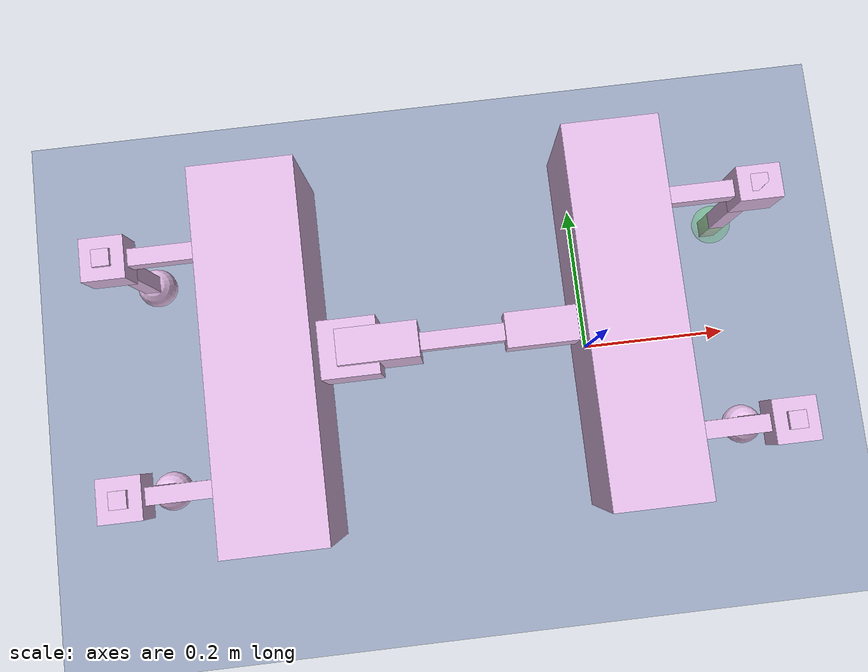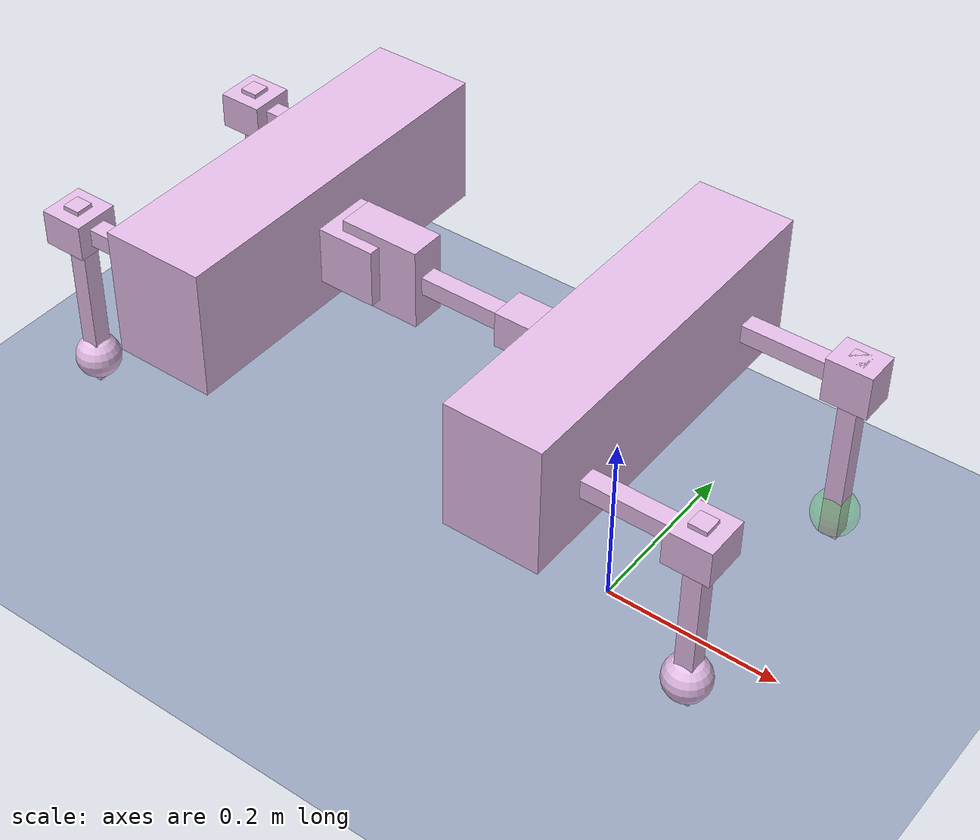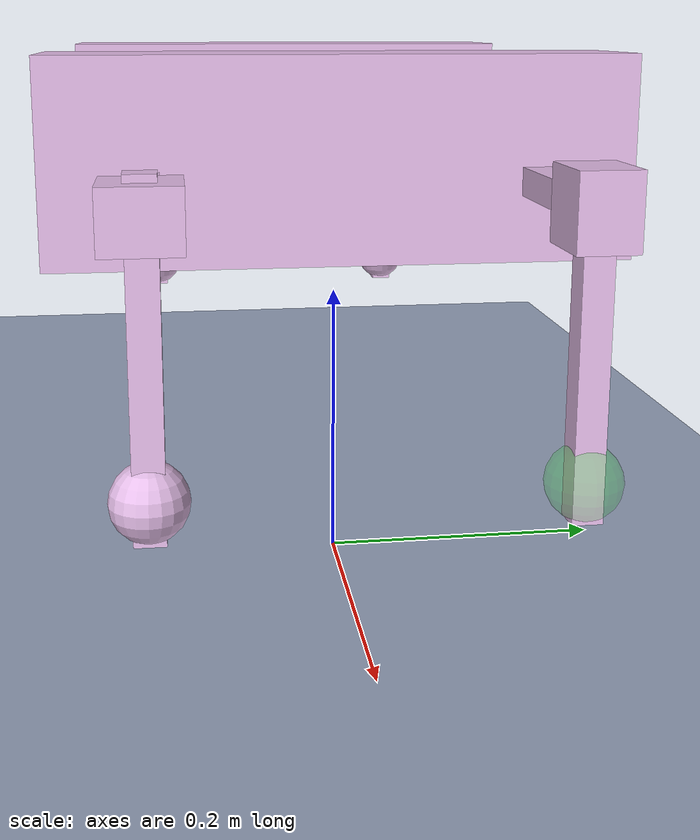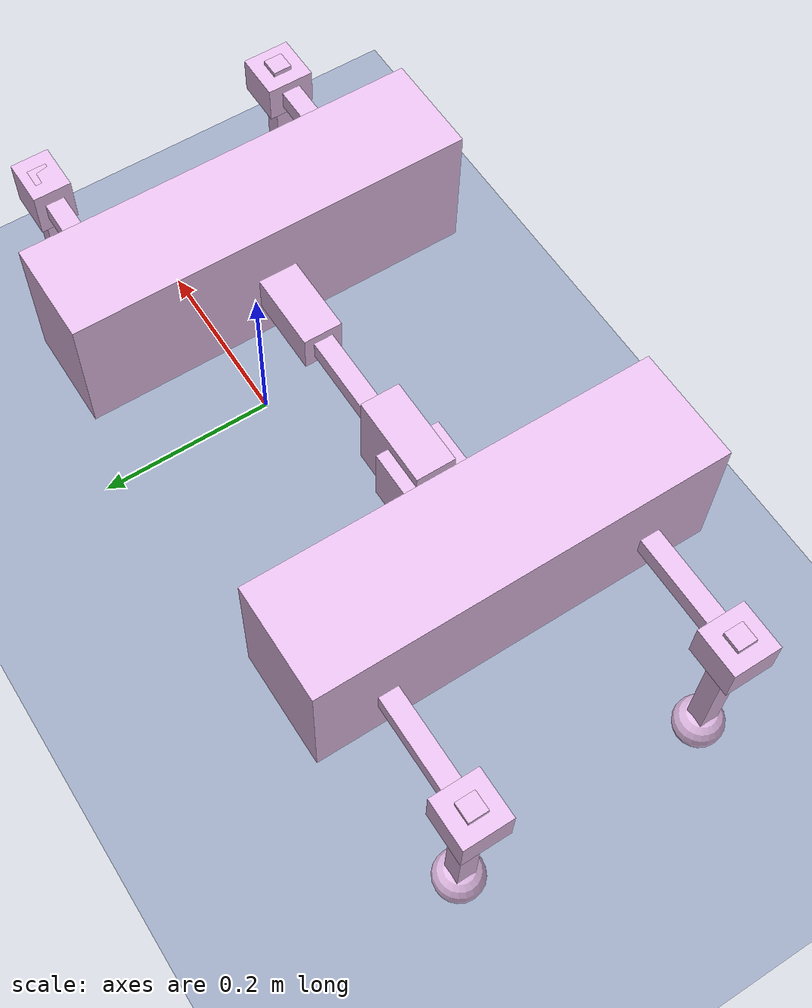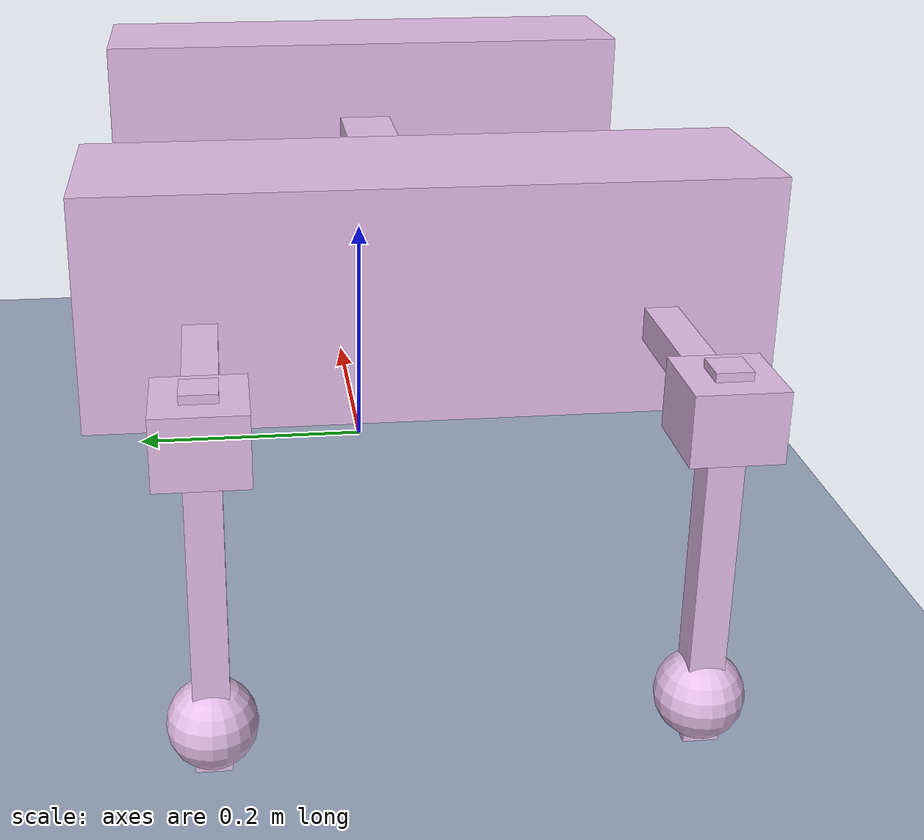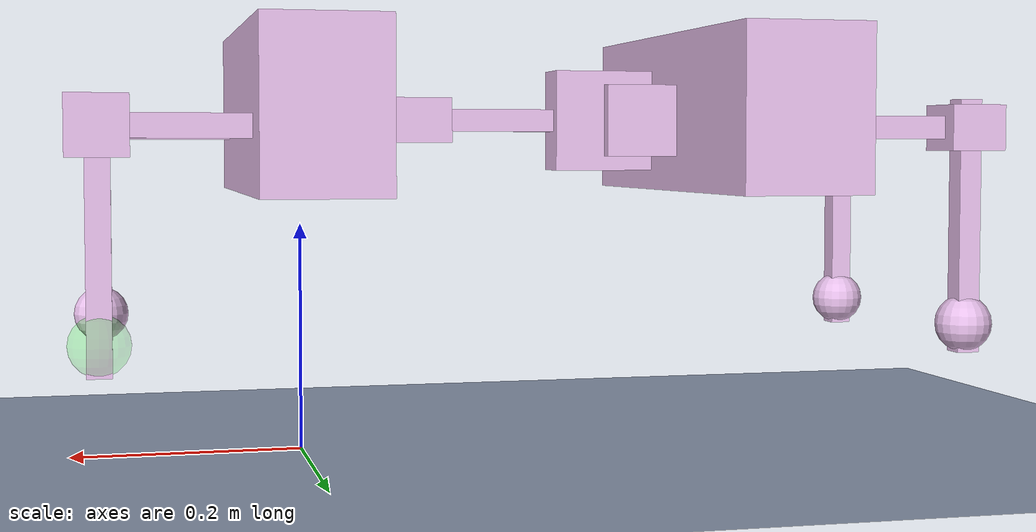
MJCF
<!--stray model

-->

<mujoco model='Stray'>
  <compiler inertiafromgeom='false' angle='degree' eulerseq='xyz'/>
  <size nuser_actuator='1' nuser_sensor='1'/>
  <option timestep='0.001' iterations='50' solver='PGS' gravity='0 0 -0.9.806'/>
  <!-- Timestep is set to 0.001 because our controller runs at 1kHz (-9.806) -->
  <!-- Larger values still have stable dynamics -->
    <visual>
    <quality shadowsize='4096'/>
    <map znear='0.05'/>
    </visual>

    <default>
      <joint limited='true'/>
      <geom contype='0' conaffinity='0' condim='1' solref=".005 1" solimp=".8 .8 .01" material='collision'/>
      <equality solref='0.005 1'/>
      <motor ctrllimited='true'/>
      <mesh scale='0.001 0.001 0.001'/>

      <default class='mesh-import'>
          <geom type='mesh' euler='0 90 90' material='cassie'/>
      </default>
    </default>

    <asset>
        <texture type='skybox' builtin='gradient' width='128' height='128' rgb1='0.725490196078431   0.403921568627451   1.000000000000000' rgb2='1.000000000000000   0.984313725490196   0.588235294117647'/>
        <texture name='plane' type='2d' builtin='checker'  rgb1='0.2 0.3 0.5' rgb2='1 1 1' width='128' height='128'/>
        <material name='plane' reflectance='0' texture='plane' texrepeat='4 4' texuniform='true'/>
        <material name='cassie' rgba='0.8921568627451   0.73921568627451   0.9078431372549 1'/>
        <material name='collision' rgba='0 1 0 0.1'/>
    </asset>

    <worldbody>
        <geom type='plane' size='100 100 100' material='plane' condim='3' contype='1' conaffinity='1' friction='1 0.005 0.0001'/>
        <light name="temp" mode='fixed' castshadow='false' active="true" pos='2 -2 5' exponent='1'/>
        <body name='front_body' pos='-0.00 0 0.3'>
            <site name="bodyref" size="0.01"/>
            <camera name="track" mode="trackcom" pos="0 -3 0.5" xyaxes="1 0 0 0 0 1"/>

            <inertial pos="0.05 0 0" mass="6.53617385" diaginertia="0.12444697 0.07859602 0.18081671" />
            <geom type='box' size='0.0525 0.2055 0.072' material='cassie' contype='1' conaffinity='1' condim='3' />
            <geom type='box' size='0.0525 0.2055 0.072' material='cassie' />

            <freejoint name="root" />>

            <!-- LF U -->
            <body name='LF_U' pos='0.1125 0.1345 -0.015' euler='0 0 0'>
               <inertial pos='0 0 0' mass='0.00001' diaginertia='0.000000001 0.000000001 0.000000001'/>
               <geom type='box' size='0.06 0.01 0.01' material='cassie'/>

               <!-- lf leg -->
               <body name='phi_LF' pos='0.06 0 0' euler='0 0 0'>
                  <inertial pos='0 0 0' mass='0.00001' diaginertia='0.000000001 0.000000001 0.000000001'/>
                  <geom type='box' size="0.025 0.02 0.025" euler="0 0 0" material='cassie' contype='1' conaffinity='1' condim='3' />
                  <geom type='box' size="0.025 0.02 0.025" euler="0 0 0" material='cassie' />
                  <joint name='phi_LF' type='hinge' pos='0 0 0' axis='0 1 0' range='-90 90' ref='0' armature='0.0001'/>

                  <body name="len_LF" pos='0.0 0 -0.1732' euler='0 0 0'>
                    <inertial pos='0 0 0' mass='0.00001' diaginertia='0.000000001 0.000000001 0.000000001'/>
                    <geom type='box' size='0.01 0.01 0.1116' material='cassie' pos="0 0 0.0866" />
                    <joint name='len_LF' type='slide' pos='0 0 0' axis='0 0 1' range='-0.07 0.07' ref='0' armature='0.0001'/>

                    <body name='foot1' pos='0 0 0' euler='0 0 0'>
                          <inertial pos="0 0 0" mass="0.01393601" diaginertia="0.00000166 0.00000366 0.00000244" />
                          <geom type='sphere' size="0.025" contype='1' conaffinity='1' condim='3'/>

                    </body>
                  </body>

               </body>
            </body>

            <!-- RF U -->
            <body name='RF_U' pos='0.1125 -0.1345 -0.015' euler='0 0 0'>
               <inertial pos='0 0 0' mass='0.00001' diaginertia='0.000000001 0.000000001 0.000000001'/>
               <geom type='box' size='0.06 0.01 0.01' material='cassie'/>

               <!-- rf leg -->
               <body name='phi_RF' pos='0.06 0 0' euler='0 0 0'>
                  <inertial pos='0 0 0' mass='0.00001' diaginertia='0.000000001 0.000000001 0.000000001'/>
                  <geom type='box' size="0.025 0.02 0.025" euler="90 0 0" material='cassie' contype='1' conaffinity='1' condim='3'/>
                  <geom type='box' size="0.025 0.02 0.025" euler="90 0 0" material='cassie' />
                  <joint name='phi_RF' type='hinge' pos='0 0 0' axis='0 1 0' range='-90 90' ref='0' armature='0.0001'/>

                  <body name="len_RF" pos='0.0 0 -0.1732' euler='0 0 0'>
                    <inertial pos='0 0 0' mass='0.00001' diaginertia='0.000000001 0.000000001 0.000000001'/>
                    <geom type='box' size='0.01 0.01 0.1116' material='cassie' pos="0 0 0.0866" />
                    <joint name='len_RF' type='slide' pos='0 0 0' axis='0 0 1' range='-0.07 0.07' ref='0' armature='0.0001'/>

                    <body name='foot2' pos='0 0 0' euler='0 0 0'>
                          <inertial pos="0 0 0" mass="0.01393601" diaginertia="0.00000166 0.00000366 0.00000244" />
                          <geom type='sphere' size="0.025" material='cassie' contype='1' conaffinity='1' condim='3'/>

                    </body>
                  </body>

               </body>
            </body>

            <!-- spine_front -->
            <body name='spine_f' pos='-0.093 0 -0.008' euler='0 0 0'>
                <inertial pos='0 0 0' mass='0.00001' diaginertia='0.000000001 0.000000001 0.000000001'/>
                <geom type='box' size='0.0405 0.02 0.02' euler="0 0 0" material='cassie' contype='1' conaffinity='1' condim='3'/>
                <geom type='box' size='0.0405 0.02 0.02' euler="0 0 0" material='cassie'/>
                <joint name='spine_f' type='hinge' pos='0.04425 0 0' axis='1 0 0' range='-180 180' ref='0' armature='0.0001' />

                <body name='tube' pos='-0.1108118 0 0' euler='0 0 0'>
                    <inertial pos='0 0 0' mass='0.0000001' diaginertia='0.00001 0.00001 0.00001'/>
                    <geom type='box' size='0.1 0.01 0.01' material='cassie'/>
                    <joint name='spine_slide' type='slide' axis='1 0 0' limited='true' ref='0' range='-0.04 0.04'/>

                    <body name='spine_phi_motor' pos='-0.0703118 0 0' euler='0 0 0'>
                        <inertial pos='0 0 0' mass='0.00001' diaginertia='0.000000001 0.000000001 0.000000001'/>
                        <geom type='box' size='0.045 0.02 0.045' euler="0 0 0" material='cassie' />

                        <body name='spine_phi' pos='-0.0 0 0' euler='0 0 0'>
                            <inertial pos="0 0 0" mass="1.61358221" diaginertia="0.00705558 0.00247344 0.00724607" />
                            <geom type='box' size="0.0325 0.0325 0.0325" euler="0 0 0" pos="-0.0325 0 0" material='cassie'/>
                            <joint name='spine_phi' type='hinge' pos='0 0 0' axis='0 1 0' range='-90 90' ref='0' armature='0.0001'/>

                            <body name='hind_body' pos='-0.122 0 0.008' euler='0 0 0'>
                                <inertial pos="-0.05 0 0" mass="6.33306601" diaginertia="0.10445130 0.06424537 0.14874071" />
                                <geom type='box' size='0.057 0.2055 0.072' euler="0 0 0" material='cassie' contype='1' conaffinity='1' condim='3'/>
                                <geom type='box' size='0.057 0.2055 0.072' euler="0 0 0" material='cassie'/>
                                <joint name='spine_h' type='hinge' pos='0.057 0 0' axis='1 0 0' range='-180 180' ref='0'  armature='0.0001'/>

                                <!-- LH U -->
                                <body name='LH_U' pos='-0.117 0.1345 -0.015' euler='0 0 0'>
                                <inertial pos='0 0 0' mass='0.00001' diaginertia='0.000000001 0.000000001 0.000000001'/>
                                <geom type='box' size='0.06 0.01 0.01' material='cassie'/>

                                <!-- lh leg -->
                                <body name='phi_LH' pos='-0.06 0 0' euler='0 0 0'>
                                    <inertial pos='0 0 0' mass='0.00001' diaginertia='0.000000001 0.000000001 0.000000001'/>
                                    <geom type='box' size="0.025 0.02 0.025" euler="90 0 0" material='cassie' contype='1' conaffinity='1' condim='3'/>
                                    <geom type='box' size="0.025 0.02 0.025" euler="90 0 0" material='cassie' />
                                    <joint name='phi_LH' type='hinge' pos='0 0 0' axis='0 1 0' range='-90 90' ref='0' armature='0.0001'/>

                                    <body name="len_LH" pos='0.0 0 -0.1732' euler='0 0 0'>
                                        <inertial pos='0 0 0' mass='0.00001' diaginertia='0.000000001 0.000000001 0.000000001'/>
                                        <geom type='box' size='0.01 0.01 0.1116' material='cassie' pos="0 0 0.0866" />
                                        <joint name='len_LH' type='slide' pos='0 0 0' axis='0 0 1' range='-0.07 0.07' ref='0' armature='0.0001'/>

                                        <body name='foot3' pos='0 0 0' euler='0 0 0'>
                                            <inertial pos="0 0 0" mass="0.01393601" diaginertia="0.00000166 0.00000366 0.00000244" />
                                            <geom type='sphere' size="0.025" material='cassie' contype='1' conaffinity='1' condim='3'/>

                                        </body>
                                    </body>

                                </body>
                                </body>

                                <!-- RH U -->
                                <body name='RH_U' pos='-0.117 -0.1345 -0.015' euler='0 0 0'>
                                <inertial pos='0 0 0' mass='0.00001' diaginertia='0.000000001 0.000000001 0.000000001'/>
                                <geom type='box' size='0.06 0.01 0.01' material='cassie'/>

                                <!-- rh leg -->
                                <body name='phi_RH' pos='-0.06 0 0' euler='0 0 0'>
                                    <inertial pos='0 0 0' mass='0.00001' diaginertia='0.000000001 0.000000001 0.000000001'/>
                                    <geom type='box' size="0.025 0.02 0.025" euler="90 0 0" material='cassie' contype='1' conaffinity='1' condim='3'/>
                                    <geom type='box' size="0.025 0.02 0.025" euler="90 0 0" material='cassie' />
                                    <joint name='phi_RH' type='hinge' pos='0 0 0' axis='0 1 0' range='-90 90' ref='0' armature='0.0001'/>

                                    <body name="len_RH" pos='0.0 0 -0.1732' euler='0 0 0'>
                                        <inertial pos='0 0 0' mass='0.00001' diaginertia='0.000000001 0.000000001 0.000000001'/>
                                        <geom type='box' size='0.01 0.01 0.1116' material='cassie' pos="0 0 0.0866" />
                                        <joint name='len_RH' type='slide' pos='0 0 0' axis='0 0 1' range='-0.07 0.07' ref='0' armature='0.0001'/>

                                        <body name='foot4' pos='0 0 0' euler='0 0 0'>
                                            <inertial pos="0 0 0" mass="0.01393601" diaginertia="0.00000166 0.00000366 0.00000244" />
                                            <geom type='sphere' size="0.025" material='cassie' contype='1' conaffinity='1' condim='3'/>

                                        </body>
                                    </body>

                                </body>
                                </body>
                            </body>
                        </body>
                    </body>
                </body>
            </body>
        </body>

    </worldbody>

    <actuator>
        <motor name="phi_LF" ctrllimited='true' ctrlrange='-60 60' joint='phi_LF' gear='1'/>
        <motor name="len_LF" ctrllimited='true' ctrlrange='-600 600' joint='len_LF' gear='1'/>
        <motor name="phi_RF" ctrllimited='true' ctrlrange='-60 60' joint='phi_RF' gear='1'/>
        <motor name="len_RF" ctrllimited='true' ctrlrange='-600 600' joint='len_RF' gear='1'/>
        <motor name="spine_f" ctrllimited='true' ctrlrange='-30 30' joint='spine_f' gear='1'/>
        <motor name="spine_slide" ctrllimited='true' ctrlrange='-400 400' joint='spine_slide' gear='1'/>
        <motor name="spine_phi" ctrllimited='true' ctrlrange='-60 60' joint='spine_phi' gear='1'/>
        <motor name="spine_h" ctrllimited='true' ctrlrange='-30 30' joint='spine_h' gear='1'/>
        <motor name="phi_LH" ctrllimited='true' ctrlrange='-60 60' joint='phi_LH' gear='1'/>
        <motor name="len_LH" ctrllimited='true' ctrlrange='-600 600' joint='len_LH' gear='1'/>
        <motor name="phi_RH" ctrllimited='true' ctrlrange='-60 60' joint='phi_RH' gear='1'/>
        <motor name="len_RH" ctrllimited='true' ctrlrange='-600 600' joint='len_RH' gear='1'/>
    </actuator>&gt;

</mujoco>
